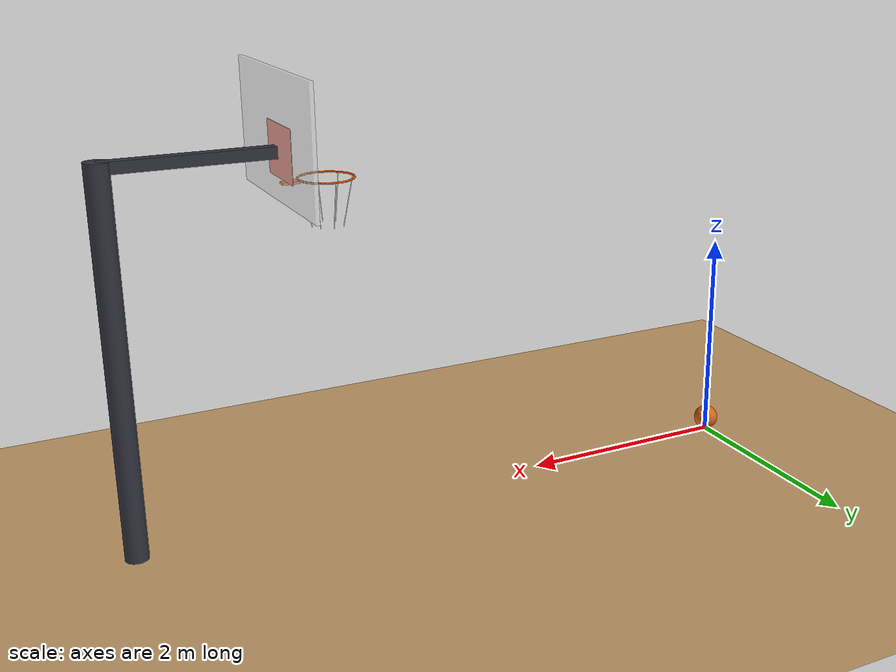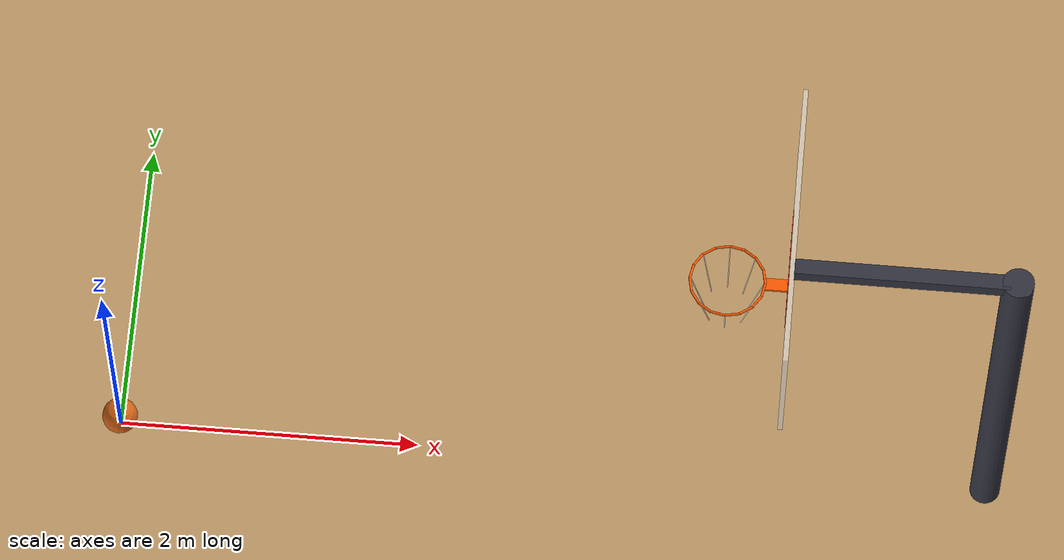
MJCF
<mujoco model="basketball_shot">
  <option timestep="0.002" gravity="0 0 -9.81"/>

  <visual>
    <global offwidth="1280" offheight="720"/>
  </visual>

  <worldbody>
    <light name="sun" pos="2 -3 8" dir="0 0.3 -1" directional="true"/>
    <geom name="floor" type="plane" pos="0 0 0" size="10 10 0.1" rgba="0.75 0.6 0.4 1" friction="0.8 0.005 0.0001"/>

    <!-- Backboard (1.83 m x 1.07 m), front face at x = 4.38, bottom edge at 2.90 m -->
    <geom name="backboard" type="box" pos="4.395 0 3.435" size="0.015 0.915 0.535" rgba="0.95 0.95 0.95 0.6"/>
    <geom name="backboard_square" type="box" pos="4.378 0 3.30" size="0.002 0.30 0.225" rgba="0.9 0.2 0.1 1" contype="0" conaffinity="0"/>
    <!-- Support arm and padded pole -->
    <geom name="support_arm" type="box" pos="5.105 0 3.30" size="0.695 0.05 0.05" rgba="0.2 0.2 0.25 1"/>
    <geom name="pole" type="cylinder" fromto="5.8 0 0 5.8 0 3.35" size="0.1" rgba="0.2 0.2 0.25 1"/>

    <!-- Hoop: origin is rim centre, 3.05 m high, 4 m from launch point -->
    <body name="hoop" pos="4 0 3.05">
      <geom name="rim_00" type="capsule" fromto="0.23660 0 0 0.21859 0.09054 0" size="0.008" rgba="1 0.35 0 1"/>
      <geom name="rim_01" type="capsule" fromto="0.21859 0.09054 0 0.16730 0.16730 0" size="0.008" rgba="1 0.35 0 1"/>
      <geom name="rim_02" type="capsule" fromto="0.16730 0.16730 0 0.09054 0.21859 0" size="0.008" rgba="1 0.35 0 1"/>
      <geom name="rim_03" type="capsule" fromto="0.09054 0.21859 0 0 0.23660 0" size="0.008" rgba="1 0.35 0 1"/>
      <geom name="rim_04" type="capsule" fromto="0 0.23660 0 -0.09054 0.21859 0" size="0.008" rgba="1 0.35 0 1"/>
      <geom name="rim_05" type="capsule" fromto="-0.09054 0.21859 0 -0.16730 0.16730 0" size="0.008" rgba="1 0.35 0 1"/>
      <geom name="rim_06" type="capsule" fromto="-0.16730 0.16730 0 -0.21859 0.09054 0" size="0.008" rgba="1 0.35 0 1"/>
      <geom name="rim_07" type="capsule" fromto="-0.21859 0.09054 0 -0.23660 0 0" size="0.008" rgba="1 0.35 0 1"/>
      <geom name="rim_08" type="capsule" fromto="-0.23660 0 0 -0.21859 -0.09054 0" size="0.008" rgba="1 0.35 0 1"/>
      <geom name="rim_09" type="capsule" fromto="-0.21859 -0.09054 0 -0.16730 -0.16730 0" size="0.008" rgba="1 0.35 0 1"/>
      <geom name="rim_10" type="capsule" fromto="-0.16730 -0.16730 0 -0.09054 -0.21859 0" size="0.008" rgba="1 0.35 0 1"/>
      <geom name="rim_11" type="capsule" fromto="-0.09054 -0.21859 0 0 -0.23660 0" size="0.008" rgba="1 0.35 0 1"/>
      <geom name="rim_12" type="capsule" fromto="0 -0.23660 0 0.09054 -0.21859 0" size="0.008" rgba="1 0.35 0 1"/>
      <geom name="rim_13" type="capsule" fromto="0.09054 -0.21859 0 0.16730 -0.16730 0" size="0.008" rgba="1 0.35 0 1"/>
      <geom name="rim_14" type="capsule" fromto="0.16730 -0.16730 0 0.21859 -0.09054 0" size="0.008" rgba="1 0.35 0 1"/>
      <geom name="rim_15" type="capsule" fromto="0.21859 -0.09054 0 0.23660 0 0" size="0.008" rgba="1 0.35 0 1"/>
      <!-- Bracket joining the rim to the backboard -->
      <geom name="bracket" type="box" pos="0.3083 0 -0.01" size="0.0717 0.04 0.01" rgba="1 0.35 0 1"/>
      <!-- Visual-only net -->
      <geom name="net_0" type="capsule" fromto="0.230 0 0 0.140 0 -0.40" size="0.003" rgba="1 1 1 0.7" contype="0" conaffinity="0"/>
      <geom name="net_1" type="capsule" fromto="0.1626 0.1626 0 0.0990 0.0990 -0.40" size="0.003" rgba="1 1 1 0.7" contype="0" conaffinity="0"/>
      <geom name="net_2" type="capsule" fromto="0 0.230 0 0 0.140 -0.40" size="0.003" rgba="1 1 1 0.7" contype="0" conaffinity="0"/>
      <geom name="net_3" type="capsule" fromto="-0.1626 0.1626 0 -0.0990 0.0990 -0.40" size="0.003" rgba="1 1 1 0.7" contype="0" conaffinity="0"/>
      <geom name="net_4" type="capsule" fromto="-0.230 0 0 -0.140 0 -0.40" size="0.003" rgba="1 1 1 0.7" contype="0" conaffinity="0"/>
      <geom name="net_5" type="capsule" fromto="-0.1626 -0.1626 0 -0.0990 -0.0990 -0.40" size="0.003" rgba="1 1 1 0.7" contype="0" conaffinity="0"/>
      <geom name="net_6" type="capsule" fromto="0 -0.230 0 0 -0.140 -0.40" size="0.003" rgba="1 1 1 0.7" contype="0" conaffinity="0"/>
      <geom name="net_7" type="capsule" fromto="0.1626 -0.1626 0 0.0990 -0.0990 -0.40" size="0.003" rgba="1 1 1 0.7" contype="0" conaffinity="0"/>
    </body>

    <!-- Regulation size-7 basketball: r = 0.1193 m, m = 0.62 kg, hollow-shell inertia 2/3 m r^2 -->
    <body name="ball" pos="0 0 0.12">
      <freejoint name="ball_free"/>
      <inertial pos="0 0 0" mass="0.62" diaginertia="0.00588 0.00588 0.00588"/>
      <geom name="ball" type="sphere" size="0.1193" rgba="0.85 0.4 0.1 1" friction="0.8 0.005 0.0001"/>
    </body>
  </worldbody>

  <keyframe>
    <!-- Apex ~4.0 m; passes rim centre (4, 0, 3.05) descending at ~55 deg after 1.33 s -->
    <key name="start" qpos="0 0 0.12 1 0 0 0" qvel="3.009 0 8.725 0 -6 0"/>
  </keyframe>
</mujoco>
